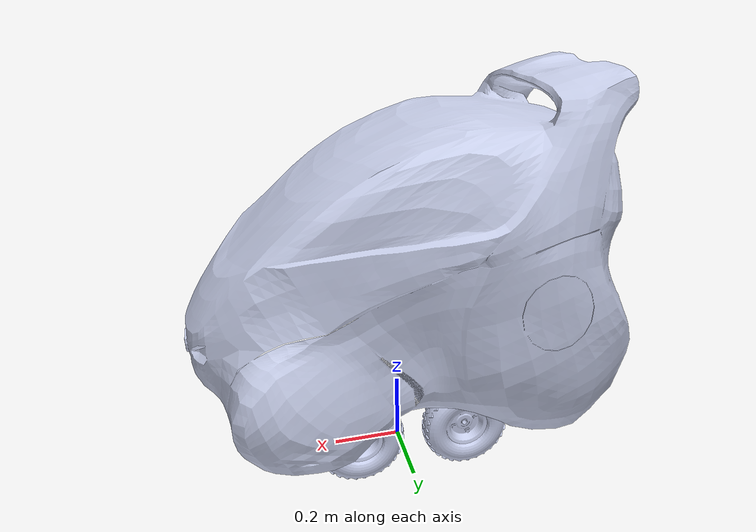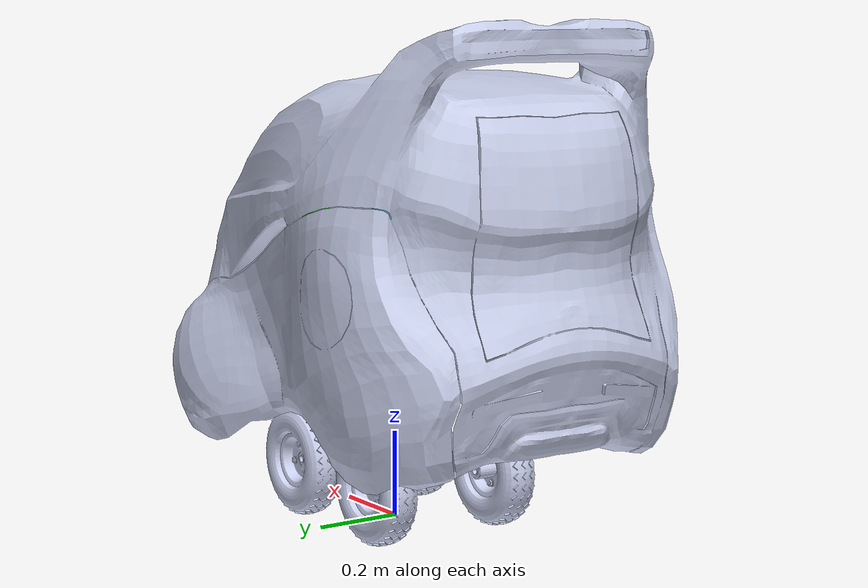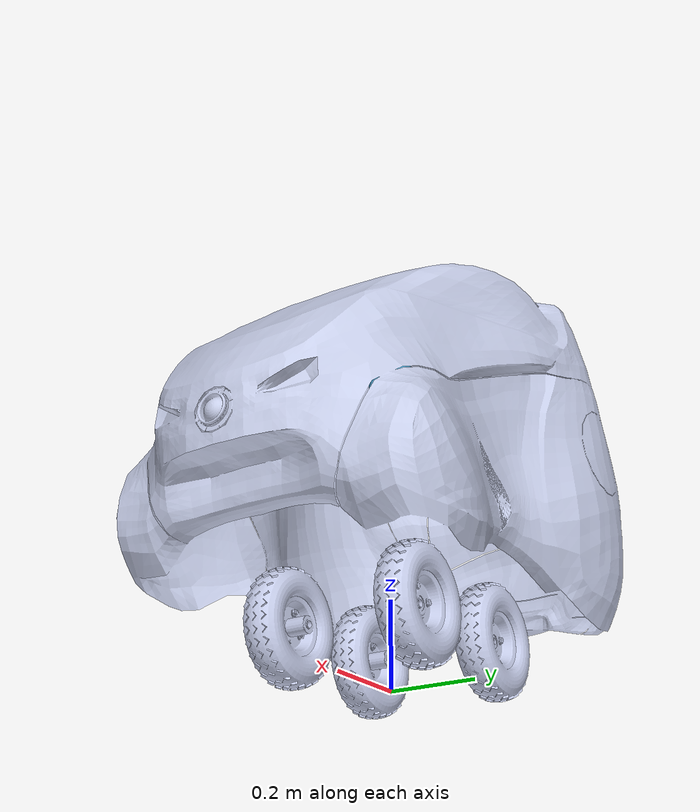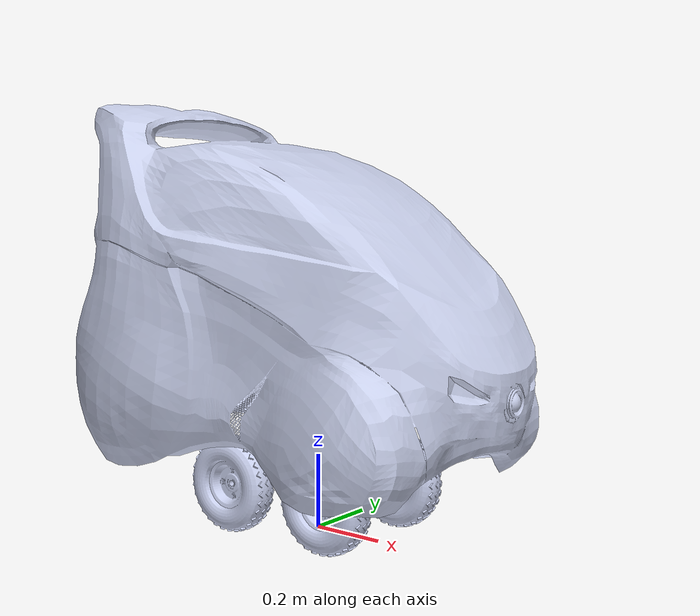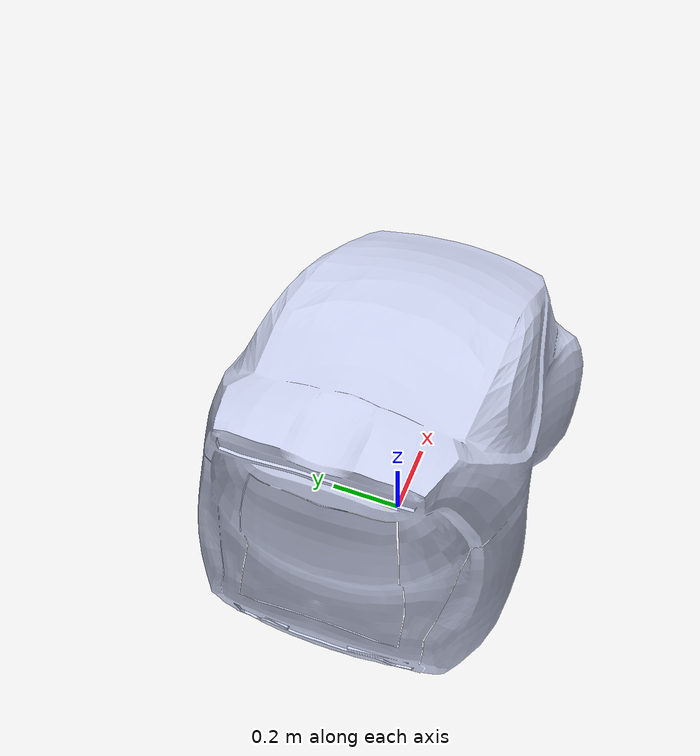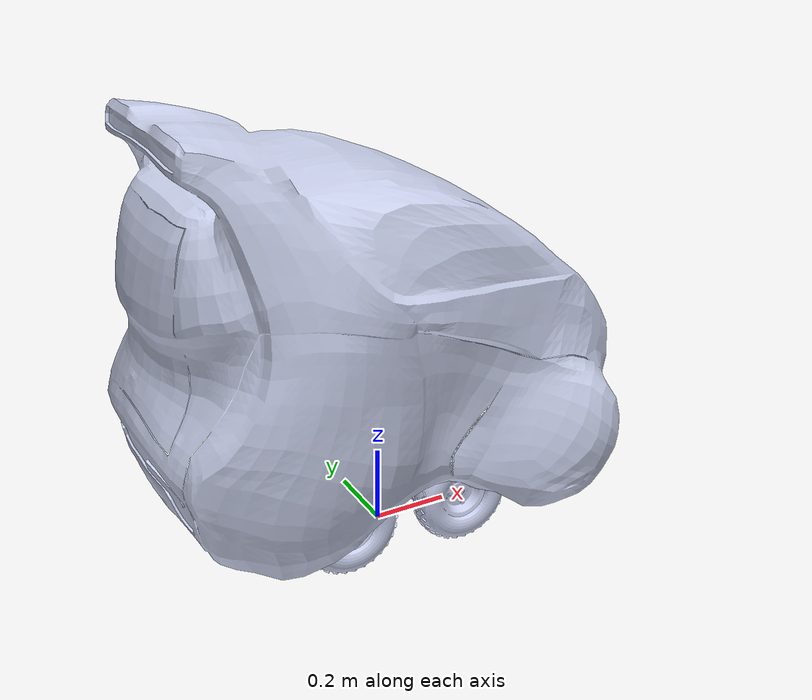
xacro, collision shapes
<?xml version="1.0"?>

<robot
  name="robot_base"
  xmlns:xacro="http://www.ros.org/wiki/xacro"
  >

<xacro:include filename="$(find robot_base_description)/urdf/robot_base_3D.gazebo" />
  <xacro:property name="cameraSize" value="0.05"/>
  <xacro:property name="cameraMass" value="0.1"/>
  <xacro:arg name="gpu" default="true"/>
  <xacro:property name="gpu" value="$(arg gpu)" />

  <link  name="base_link" />

   <link
    name="chassis">
    <inertial>
      <origin
        xyz="-0.025921 -0.00023881 -0.093361"
        rpy="0 0 0" />
      <mass
        value="30" />
      <inertia
        ixx="0.28974"
        ixy="-0.003469"
        ixz="0.037331"
        iyy="0.71812"
        iyz="-0.0010571"
        izz="0.69853" />
    </inertial>
    <visual>
      <origin
        xyz="0 0 0"
        rpy="0 0 0" />
      <geometry>
        <mesh
          filename="package://robot_base_description/meshes/CHASSIS.STL" />
      </geometry>
      <material
        name="">
        <color
          rgba="0.79216 0.81961 0.92549 1" />
      </material>
    </visual>
    <collision>
      <origin
        xyz="0 0 0"
        rpy="0 0 0" />
      <geometry>
        <mesh
          filename="package://robot_base_description/meshes/CHASSIS.STL" />
      </geometry>
    </collision>
  </link>

  <joint
    name="Jchassis"
    type="fixed">
    <origin
      xyz="0 0 0.35"
      rpy="0 0 0" />
    <parent
      link="base_link" />
    <child
      link="chassis" />
    <axis
      xyz="0 0 0" />
  </joint>

  <link
    name="BACKLEFT">
    <inertial>
      <origin
        xyz="1.65962350251458E-08 -8.84673626022625E-09 -0.0498964284532317"
        rpy="0 0 0" />
      <mass
        value="0.77232206628976" />
      <inertia
        ixx="0.00443896849024447"
        ixy="-3.02140628597077E-11"
        ixz="5.442779494062E-11"
        iyy="0.00443896845341419"
        iyz="-9.99835468776006E-10"
        izz="0.00774013288362775" />
    </inertial>
    <visual>
      <origin
        xyz="0 0 0"
        rpy="0 0 0" />
      <geometry>
        <mesh
          filename="package://robot_base_description/meshes/BACKLEFT.STL" />
      </geometry>
      <material
        name="">
        <color
          rgba="0.792156862745098 0.819607843137255 0.933333333333333 1" />
      </material>
    </visual>
    <collision>
      <origin
        xyz="0 0 0"
        rpy="0 0 0" />
      <geometry>
        <mesh
          filename="package://robot_base_description/meshes/BACKLEFT.STL" />
      </geometry>
    </collision>
  </link>

  <joint
    name="JBACKLEFT"
    type="continuous">
    <origin
      xyz="-0.16863 -0.10771 -0.225"
      rpy="-1.5708 -0.065299 0" />
    <parent
      link="chassis" />
    <child
      link="BACKLEFT" />
    <axis
      xyz="0 0 1" />
  </joint>

  <link
    name="FRONTLEFT">
    <inertial>
      <origin
        xyz="1.65962353582128E-08 -8.84674272727537E-09 -0.0498964284532357"
        rpy="0 0 0" />
      <mass
        value="0.772322066290233" />
      <inertia
        ixx="0.00443896849024465"
        ixy="-3.02140179195276E-11"
        ixz="5.44278128222843E-11"
        iyy="0.0044389684534144"
        iyz="-9.99835496240399E-10"
        izz="0.00774013288362813" />
    </inertial>
    <visual>
      <origin
        xyz="0 0 0"
        rpy="0 0 0" />
      <geometry>
        <mesh
          filename="package://robot_base_description/meshes/FRONTLEFT.STL" />
      </geometry>
      <material
        name="">
        <color
          rgba="0.792156862745098 0.819607843137255 0.933333333333333 1" />
      </material>
    </visual>
    <collision>
      <origin
        xyz="0 0 0"
        rpy="0 0 0" />
      <geometry>
        <mesh
          filename="package://robot_base_description/meshes/FRONTLEFT.STL" />
      </geometry>
    </collision>
  </link>

  <joint
    name="JFRONTLEFT"
    type="continuous">
    <origin
      xyz="0.15137 -0.10771 -0.225"
      rpy="-1.5708 -0.26474 0" />
    <parent
      link="chassis" />
    <child
      link="FRONTLEFT" />
    <axis
      xyz="0 0 1" />
  </joint>

  <link
    name="BACKRIGHT">
    <inertial>
      <origin
        xyz="1.65962350945348E-08 -8.84673900802824E-09 -0.0498964284532359"
        rpy="0 0 0" />
      <mass
        value="0.772322066290243" />
      <inertia
        ixx="0.0044389684902447"
        ixy="-3.02140381941082E-11"
        ixz="5.44278094802563E-11"
        iyy="0.00443896845341444"
        iyz="-9.99835486833146E-10"
        izz="0.00774013288362821" />
    </inertial>
    <visual>
      <origin
        xyz="0 0 0"
        rpy="0 0 0" />
      <geometry>
        <mesh
          filename="package://robot_base_description/meshes/BACKRIGHT.STL" />
      </geometry>
      <material
        name="">
        <color
          rgba="0.792156862745098 0.819607843137255 0.933333333333333 1" />
      </material>
    </visual>
    <collision>
      <origin
        xyz="0 0 0"
        rpy="0 0 0" />
      <geometry>
        <mesh
          filename="package://robot_base_description/meshes/BACKRIGHT.STL" />
      </geometry>
    </collision>
  </link>

  <joint
    name="JBACKRIGHT"
    type="continuous">
    <origin
      xyz="-0.168632176552961 0.107714 -0.225"
      rpy="-1.5707963267949 -0.286829445495934 3.14159265358979" />
    <parent
      link="chassis" />
    <child
      link="BACKRIGHT" />
    <axis
      xyz="0 0 -1" />
  </joint>

  <link
    name="FRONTRIGHT">
    <inertial>
      <origin
        xyz="1.6596235274946E-08 -8.84673742596043E-09 -0.0498964284532353"
        rpy="0 0 0" />
      <mass
        value="0.772322066290254" />
      <inertia
        ixx="0.00443896849024475"
        ixy="-3.02140848148016E-11"
        ixz="5.44277964787439E-11"
        iyy="0.0044389684534145"
        iyz="-9.99835522519038E-10"
        izz="0.00774013288362831" />
    </inertial>
    <visual>
      <origin
        xyz="0 0 0"
        rpy="0 0 0" />
      <geometry>
        <mesh
          filename="package://robot_base_description/meshes/FRONTRIGHT.STL" />
      </geometry>
      <material
        name="">
        <color
          rgba="0.792156862745098 0.819607843137255 0.933333333333333 1" />
      </material>
    </visual>
    <collision>
      <origin
        xyz="0 0 0"
        rpy="0 0 0" />
      <geometry>
        <mesh
          filename="package://robot_base_description/meshes/FRONTRIGHT.STL" />
      </geometry>
    </collision>
  </link>

  <joint
    name="JFRONTRIGHT"
    type="continuous">
    <origin
      xyz="0.15136782344704 0.107714 -0.225"
      rpy="-1.5707963267949 -0.286829445495934 3.14159265358979" />
    <parent
      link="chassis" />
    <child
      link="FRONTRIGHT" />
    <axis
      xyz="0 0 -1" />
  </joint>

    <joint
    name="lidar_joint"
    type="fixed">
    <origin
      xyz="0.35 0.0 0.225"
      rpy="0 0 0 " />
    <parent
      link="chassis" />
    <child
      link="lidar" />
  </joint>

  <link  name="lidar" />
    <joint
    name="imu_joint"
    type="fixed">
    <origin
      xyz="0.0 0.0 0.15"
      rpy="0 0 0 " />
    <parent
      link="base_link" />
    <child
      link="imu_link" />
  </joint>

  <link  name="imu_link" />

  <link name="camera">
    <collision>
      <origin xyz="0 0 0" rpy="0 0 0"/>
      <geometry>
        <box size="${cameraSize} ${cameraSize} ${cameraSize}"/>
      </geometry>
    </collision>

    <visual>
      <origin xyz="0 0 0" rpy="0 0 0"/>
      <geometry>
        <box size="${cameraSize} ${cameraSize} ${cameraSize}"/>
      </geometry>
      <material name="green"/>
    </visual>

    <inertial>
      <mass value="${cameraMass}" />
      <origin xyz="0 0 0" rpy="0 0 0"/>
      <box_inertia m="${cameraMass}" x="${cameraSize}" y="${cameraSize}" z="${cameraSize}" />
      <inertia ixx="1e-6" ixy="0" ixz="0" iyy="1e-6" iyz="0" izz="1e-6" />
    </inertial>
  </link>

  <joint name="camera_joint" type="fixed">
    <axis xyz="0 0 0" />
    <origin xyz="0 0 0.1" rpy="0 0 0"/>
    <parent link="lidar"/>
    <child link="camera"/>
  </joint>

  <xacro:include filename="$(find velodyne_description)/urdf/VLP-16.urdf.xacro"/>
  <VLP-16 parent="base_link" name="velodyne" topic="/velodyne_points" hz="10" samples="440" gpu="${gpu}">
    <origin xyz="0 0 0.7" rpy="0 0 0" />
  </VLP-16>

<transmission name="front_left_trans">
  <type>transmission_interface/SimpleTransmission</type>
  <joint name="JFRONTLEFT">
    <hardwareInterface>hardware_interface/VelocityJointInterface</hardwareInterface>
  </joint>
  <actuator name="Front_Left_Motor">
    <hardwareInterface>hardware_interface/VelocityJointInterface</hardwareInterface>
    <mechanicalReduction>1</mechanicalReduction>
  </actuator>
</transmission>

<transmission name="front_right_trans">
  <type>transmission_interface/SimpleTransmission</type>
  <joint name="JFRONTRIGHT">
    <hardwareInterface>hardware_interface/VelocityJointInterface</hardwareInterface>
  </joint>
  <actuator name="Front_Right_Motor">
    <hardwareInterface>hardware_interface/VelocityJointInterface</hardwareInterface>
    <mechanicalReduction>1</mechanicalReduction>
  </actuator>
</transmission>

<transmission name="back_left_trans">
  <type>transmission_interface/SimpleTransmission</type>
  <joint name="JBACKLEFT">
    <hardwareInterface>hardware_interface/VelocityJointInterface</hardwareInterface>
  </joint>
  <actuator name="Back_Left_Motor">
    <hardwareInterface>hardware_interface/VelocityJointInterface</hardwareInterface>
    <mechanicalReduction>1</mechanicalReduction>
  </actuator>
</transmission>

<transmission name="back_right_trans">
  <type>transmission_interface/SimpleTransmission</type>
  <joint name="JBACKRIGHT">
    <hardwareInterface>hardware_interface/VelocityJointInterface</hardwareInterface>
  </joint>
  <actuator name="Back_Right_Motor">
    <hardwareInterface>hardware_interface/VelocityJointInterface</hardwareInterface>
    <mechanicalReduction>1</mechanicalReduction>
  </actuator>
</transmission>

</robot>

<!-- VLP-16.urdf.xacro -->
<robot xmlns:xacro="http://www.ros.org/wiki/xacro" name="VLP-16">
  <xacro:property name="M_PI" value="3.1415926535897931" />
  <xacro:macro name="VLP-16" params="*origin is_sim:=true parent:=base_link name:=velodyne tf_prefix:='' topic:=/velodyne_points organize_cloud:=false hz:=10 lasers:=16 samples:=1875 collision_range:=0.3 min_range:=0.0 max_range:=100.0 noise:=0.008 min_angle:=-${M_PI} max_angle:=${M_PI} gpu:=false">

    <joint name="${name}_base_mount_joint" type="fixed">
      <xacro:insert_block name="origin" />
      <parent link="${parent}"/>
      <child link="${name}_base_link"/>
    </joint>

    <link name="${name}_base_link">
      <inertial>
        <mass value="0.83"/>
        <origin xyz="0 0 0.03585"/>
        <inertia ixx="${(0.83 * (3.0*0.0516*0.0516 + 0.0717*0.0717)) / 12.0}" ixy="0" ixz="0"
          iyy="${(0.83 * (3.0*0.0516*0.0516 + 0.0717*0.0717)) / 12.0}" iyz="0"
          izz="${0.5 * 0.83 * (0.0516*0.0516)}"/>
      </inertial>
      <visual>
        <geometry>
          <mesh filename="package://velodyne_description/meshes/VLP16_base_1.dae" />
        </geometry>
      </visual>
      <visual>
        <geometry>
          <mesh filename="package://velodyne_description/meshes/VLP16_base_2.dae" />
        </geometry>
      </visual>
      <collision>
        <origin rpy="0 0 0" xyz="0 0 0.03585"/>
        <geometry>
          <cylinder radius="0.0516" length="0.0717"/>
        </geometry>
      </collision>
    </link>

    <joint name="${name}_base_scan_joint" type="fixed" >
      <origin xyz="0 0 0.0377" rpy="0 0 0" />
      <parent link="${name}_base_link" />
      <child link="${name}"/>
    </joint>

    <link name="${name}">
      <inertial>
        <mass value="0.01"/>
        <origin xyz="0 0 0"/>
        <inertia ixx="1e-7" ixy="0" ixz="0" iyy="1e-7" iyz="0" izz="1e-7"/>
      </inertial>
      <visual>
        <origin xyz="0 0 -0.0377" />
        <geometry>
          <mesh filename="package://velodyne_description/meshes/VLP16_scan.dae" />
        </geometry>
      </visual>
      <collision>
        <geometry>
          <sphere radius="0"/>
        </geometry>
      </collision>
    </link>

    <!-- Gazebo requires the velodyne_gazebo_plugins package -->
    <xacro:if value="${is_sim}">
        <gazebo reference="${name}">
            <xacro:if value="${gpu}">
                <sensor type="gpu_ray" name="${name}-VLP16">
                <pose>0 0 0 0 0 0</pose>
                <visualize>false</visualize>
                <update_rate>${hz}</update_rate>
                <ray>
                    <scan>
                    <horizontal>
                        <samples>${samples}</samples>
                        <resolution>1</resolution>
                        <min_angle>${min_angle}</min_angle>
                        <max_angle>${max_angle}</max_angle>
                    </horizontal>
                    <vertical>
                        <samples>${lasers}</samples>
                        <resolution>1</resolution>
                        <min_angle>-${15.0*M_PI/180.0}</min_angle>
                        <max_angle> ${15.0*M_PI/180.0}</max_angle>
                    </vertical>
                    </scan>
                    <range>
                    <min>${collision_range}</min>
                    <max>${max_range+1}</max>
                    <resolution>0.001</resolution>
                    </range>
                    <noise>
                    <type>gaussian</type>
                    <mean>0.0</mean>
                    <stddev>0.0</stddev>
                    </noise>
                </ray>
                <plugin name="gazebo_ros_laser_controller" filename="libgazebo_ros_velodyne_laser.so">
                    <ros>
                    <namespace>/${name}</namespace>
                    <remapping>~/out:=${topic}</remapping>
                    </ros>
                    <tf_prefix>${tf_prefix}</tf_prefix>
                    <frame_name>${name}</frame_name>
                    <organize_cloud>${organize_cloud}</organize_cloud>
                    <min_range>${min_range}</min_range>
                    <max_range>${max_range}</max_range>
                    <gaussian_noise>${noise}</gaussian_noise>
                </plugin>
                </sensor>
            </xacro:if>
            <xacro:unless value="${gpu}">
                <sensor type="ray" name="${name}-VLP16">
                <pose>0 0 0 0 0 0</pose>
                <visualize>false</visualize>
                <update_rate>${hz}</update_rate>
                <ray>
                    <scan>
                    <horizontal>
                        <samples>${samples}</samples>
                        <resolution>1</resolution>
                        <min_angle>${min_angle}</min_angle>
                        <max_angle>${max_angle}</max_angle>
                    </horizontal>
                    <vertical>
                        <samples>${lasers}</samples>
                        <resolution>1</resolution>
                        <min_angle>-${15.0*M_PI/180.0}</min_angle>
                        <max_angle> ${15.0*M_PI/180.0}</max_angle>
                    </vertical>
                    </scan>
                    <range>
                    <min>${collision_range}</min>
                    <max>${max_range+1}</max>
                    <resolution>0.001</resolution>
                    </range>
                    <noise>
                    <type>gaussian</type>
                    <mean>0.0</mean>
                    <stddev>0.0</stddev>
                    </noise>
                </ray>
                <plugin name="gazebo_ros_laser_controller" filename="libgazebo_ros_velodyne_laser.so">
                    <ros>
                    <namespace>/${name}</namespace>
                    <remapping>~/out:=${topic}</remapping>
                    </ros>
                    <tf_prefix>${tf_prefix}</tf_prefix>
                    <frame_name>${name}</frame_name>
                    <organize_cloud>${organize_cloud}</organize_cloud>
                    <min_range>${min_range}</min_range>
                    <max_range>${max_range}</max_range>
                    <gaussian_noise>${noise}</gaussian_noise>
                </plugin>
                </sensor>
            </xacro:unless>
        </gazebo>
    </xacro:if>

  </xacro:macro>
</robot>
